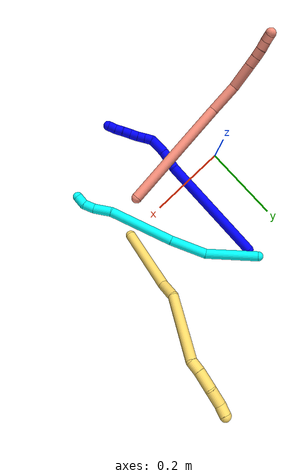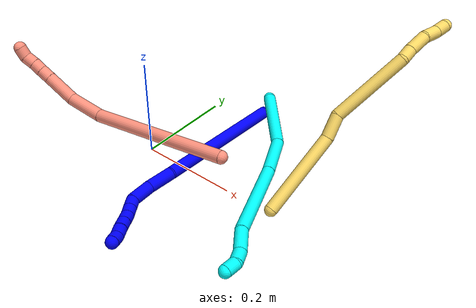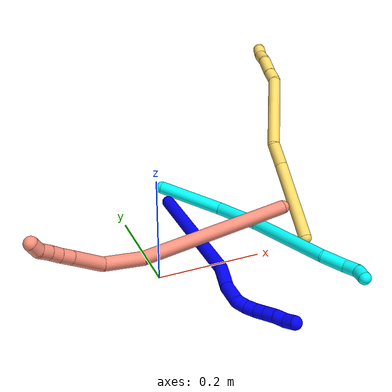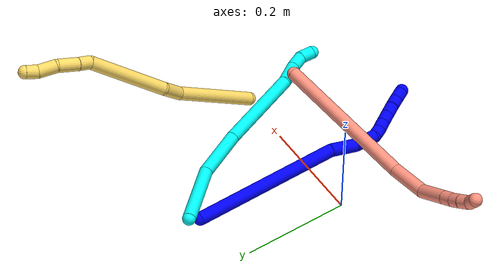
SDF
<sdf version="1.7">
 <world name="default">
  <model name="1">
   <static>0</static>
   <link name="1">
    <collision name="collision-cylinder-e_1_1_4">
     <pose>0.008289 -0.112985 -0.086522 2.22432 0.058181 0.117731</pose>
     <geometry><cylinder><radius>0.0125</radius><length>0.285099</length></cylinder></geometry>
     <surface>
      <friction><ode><mu>1.16</mu><mu2>1.16</mu2><slip1>0</slip1><slip2>0</slip2></ode></friction>
      <contact><ode><kp>1e+06</kp><kd>1</kd><max_vel>0</max_vel><min_depth>0.001</min_depth></ode></contact>
     </surface>
    </collision>
    <visual name="visual-cylinder-e_1_1_4">
     <pose>0.008289 -0.112985 -0.086522 2.22432 0.058181 0.117731</pose>
     <geometry><cylinder><radius>0.0125</radius><length>0.285099</length></cylinder></geometry>
     <material><ambient>0 0 1 1</ambient></material>
    </visual>
    <collision name="collision-cylinder-e_2_4_5">
     <pose>0.013325 -0.248405 -0.18449 2.04257 -0.128428 -0.209224</pose>
     <geometry><cylinder><radius>0.0125</radius><length>0.05079</length></cylinder></geometry>
     <surface>
      <friction><ode><mu>1.16</mu><mu2>1.16</mu2><slip1>0</slip1><slip2>0</slip2></ode></friction>
      <contact><ode><kp>1e+06</kp><kd>1</kd><max_vel>0</max_vel><min_depth>0.001</min_depth></ode></contact>
     </surface>
    </collision>
    <visual name="visual-cylinder-e_2_4_5">
     <pose>0.013325 -0.248405 -0.18449 2.04257 -0.128428 -0.209224</pose>
     <geometry><cylinder><radius>0.0125</radius><length>0.05079</length></cylinder></geometry>
     <material><ambient>0 0 1 1</ambient></material>
    </visual>
    <collision name="collision-cylinder-e_3_5_6">
     <pose>0.009464 -0.287806 -0.209417 2.24219 -0.028117 -0.058238</pose>
     <geometry><cylinder><radius>0.0125</radius><length>0.043359</length></cylinder></geometry>
     <surface>
      <friction><ode><mu>1.16</mu><mu2>1.16</mu2><slip1>0</slip1><slip2>0</slip2></ode></friction>
      <contact><ode><kp>1e+06</kp><kd>1</kd><max_vel>0</max_vel><min_depth>0.001</min_depth></ode></contact>
     </surface>
    </collision>
    <visual name="visual-cylinder-e_3_5_6">
     <pose>0.009464 -0.287806 -0.209417 2.24219 -0.028117 -0.058238</pose>
     <geometry><cylinder><radius>0.0125</radius><length>0.043359</length></cylinder></geometry>
     <material><ambient>0 0 1 1</ambient></material>
    </visual>
    <collision name="collision-cylinder-e_4_6_7">
     <pose>0.007946 -0.308529 -0.232167 2.75671 -0.090579 -0.457049</pose>
     <geometry><cylinder><radius>0.0125</radius><length>0.020084</length></cylinder></geometry>
     <surface>
      <friction><ode><mu>1.16</mu><mu2>1.16</mu2><slip1>0</slip1><slip2>0</slip2></ode></friction>
      <contact><ode><kp>1e+06</kp><kd>1</kd><max_vel>0</max_vel><min_depth>0.001</min_depth></ode></contact>
     </surface>
    </collision>
    <visual name="visual-cylinder-e_4_6_7">
     <pose>0.007946 -0.308529 -0.232167 2.75671 -0.090579 -0.457049</pose>
     <geometry><cylinder><radius>0.0125</radius><length>0.020084</length></cylinder></geometry>
     <material><ambient>0 0 1 1</ambient></material>
    </visual>
    <collision name="collision-cylinder-e_5_7_8">
     <pose>0.007427 -0.315554 -0.250958 2.81069 0.038687 0.230688</pose>
     <geometry><cylinder><radius>0.0125</radius><length>0.020151</length></cylinder></geometry>
     <surface>
      <friction><ode><mu>1.16</mu><mu2>1.16</mu2><slip1>0</slip1><slip2>0</slip2></ode></friction>
      <contact><ode><kp>1e+06</kp><kd>1</kd><max_vel>0</max_vel><min_depth>0.001</min_depth></ode></contact>
     </surface>
    </collision>
    <visual name="visual-cylinder-e_5_7_8">
     <pose>0.007427 -0.315554 -0.250958 2.81069 0.038687 0.230688</pose>
     <geometry><cylinder><radius>0.0125</radius><length>0.020151</length></cylinder></geometry>
     <material><ambient>0 0 1 1</ambient></material>
    </visual>
    <collision name="collision-cylinder-e_6_8_9">
     <pose>0.009699 -0.322584 -0.26961 2.75108 0.188369 0.891193</pose>
     <geometry><cylinder><radius>0.0125</radius><length>0.020101</length></cylinder></geometry>
     <surface>
      <friction><ode><mu>1.16</mu><mu2>1.16</mu2><slip1>0</slip1><slip2>0</slip2></ode></friction>
      <contact><ode><kp>1e+06</kp><kd>1</kd><max_vel>0</max_vel><min_depth>0.001</min_depth></ode></contact>
     </surface>
    </collision>
    <visual name="visual-cylinder-e_6_8_9">
     <pose>0.009699 -0.322584 -0.26961 2.75108 0.188369 0.891193</pose>
     <geometry><cylinder><radius>0.0125</radius><length>0.020101</length></cylinder></geometry>
     <material><ambient>0 0 1 1</ambient></material>
    </visual>
    <collision name="collision-cylinder-e_7_9_10">
     <pose>0.013424 -0.330161 -0.287877 2.74573 0.184041 0.862475</pose>
     <geometry><cylinder><radius>0.0125</radius><length>0.020147</length></cylinder></geometry>
     <surface>
      <friction><ode><mu>1.16</mu><mu2>1.16</mu2><slip1>0</slip1><slip2>0</slip2></ode></friction>
      <contact><ode><kp>1e+06</kp><kd>1</kd><max_vel>0</max_vel><min_depth>0.001</min_depth></ode></contact>
     </surface>
    </collision>
    <visual name="visual-cylinder-e_7_9_10">
     <pose>0.013424 -0.330161 -0.287877 2.74573 0.184041 0.862475</pose>
     <geometry><cylinder><radius>0.0125</radius><length>0.020147</length></cylinder></geometry>
     <material><ambient>0 0 1 1</ambient></material>
    </visual>
    <collision name="collision-cylinder-e_8_10_11">
     <pose>0.015634 -0.337691 -0.306334 2.76257 0.036471 0.189586</pose>
     <geometry><cylinder><radius>0.0125</radius><length>0.020077</length></cylinder></geometry>
     <surface>
      <friction><ode><mu>1.16</mu><mu2>1.16</mu2><slip1>0</slip1><slip2>0</slip2></ode></friction>
      <contact><ode><kp>1e+06</kp><kd>1</kd><max_vel>0</max_vel><min_depth>0.001</min_depth></ode></contact>
     </surface>
    </collision>
    <visual name="visual-cylinder-e_8_10_11">
     <pose>0.015634 -0.337691 -0.306334 2.76257 0.036471 0.189586</pose>
     <geometry><cylinder><radius>0.0125</radius><length>0.020077</length></cylinder></geometry>
     <material><ambient>0 0 1 1</ambient></material>
    </visual>
    <collision name="collision-cylinder-e_9_11_2">
     <pose>0.018926 -0.345883 -0.324216 2.65957 0.294039 1.08451</pose>
     <geometry><cylinder><radius>0.0125</radius><length>0.020192</length></cylinder></geometry>
     <surface>
      <friction><ode><mu>1.16</mu><mu2>1.16</mu2><slip1>0</slip1><slip2>0</slip2></ode></friction>
      <contact><ode><kp>1e+06</kp><kd>1</kd><max_vel>0</max_vel><min_depth>0.001</min_depth></ode></contact>
     </surface>
    </collision>
    <visual name="visual-cylinder-e_9_11_2">
     <pose>0.018926 -0.345883 -0.324216 2.65957 0.294039 1.08451</pose>
     <geometry><cylinder><radius>0.0125</radius><length>0.020192</length></cylinder></geometry>
     <material><ambient>0 0 1 1</ambient></material>
    </visual>
    <collision name="collision-sphere-2">
     <pose>0.021852 -0.350362 -0.332777 0 -0 0</pose>
     <geometry><sphere><radius>0.0125</radius></sphere></geometry>
     <surface>
      <friction><ode><mu>1.16</mu><mu2>1.16</mu2><slip1>0</slip1><slip2>0</slip2></ode></friction>
      <contact><ode><kp>1e+06</kp><kd>1</kd><max_vel>0</max_vel><min_depth>0.001</min_depth></ode></contact>
     </surface>
    </collision>
    <visual name="visual-sphere-2">
     <pose>0.021852 -0.350362 -0.332777 0 -0 0</pose>
     <geometry><sphere><radius>0.0125</radius></sphere></geometry>
     <material><ambient>0 0 1 1</ambient></material>
    </visual>
    <collision name="collision-sphere-11">
     <pose>0.016 -0.341403 -0.315654 0 -0 0</pose>
     <geometry><sphere><radius>0.0125</radius></sphere></geometry>
     <surface>
      <friction><ode><mu>1.16</mu><mu2>1.16</mu2><slip1>0</slip1><slip2>0</slip2></ode></friction>
      <contact><ode><kp>1e+06</kp><kd>1</kd><max_vel>0</max_vel><min_depth>0.001</min_depth></ode></contact>
     </surface>
    </collision>
    <visual name="visual-sphere-11">
     <pose>0.016 -0.341403 -0.315654 0 -0 0</pose>
     <geometry><sphere><radius>0.0125</radius></sphere></geometry>
     <material><ambient>0 0 1 1</ambient></material>
    </visual>
    <collision name="collision-sphere-10">
     <pose>0.015268 -0.333979 -0.297014 0 -0 0</pose>
     <geometry><sphere><radius>0.0125</radius></sphere></geometry>
     <surface>
      <friction><ode><mu>1.16</mu><mu2>1.16</mu2><slip1>0</slip1><slip2>0</slip2></ode></friction>
      <contact><ode><kp>1e+06</kp><kd>1</kd><max_vel>0</max_vel><min_depth>0.001</min_depth></ode></contact>
     </surface>
    </collision>
    <visual name="visual-sphere-10">
     <pose>0.015268 -0.333979 -0.297014 0 -0 0</pose>
     <geometry><sphere><radius>0.0125</radius></sphere></geometry>
     <material><ambient>0 0 1 1</ambient></material>
    </visual>
    <collision name="collision-sphere-9">
     <pose>0.011581 -0.326342 -0.278739 0 -0 0</pose>
     <geometry><sphere><radius>0.0125</radius></sphere></geometry>
     <surface>
      <friction><ode><mu>1.16</mu><mu2>1.16</mu2><slip1>0</slip1><slip2>0</slip2></ode></friction>
      <contact><ode><kp>1e+06</kp><kd>1</kd><max_vel>0</max_vel><min_depth>0.001</min_depth></ode></contact>
     </surface>
    </collision>
    <visual name="visual-sphere-9">
     <pose>0.011581 -0.326342 -0.278739 0 -0 0</pose>
     <geometry><sphere><radius>0.0125</radius></sphere></geometry>
     <material><ambient>0 0 1 1</ambient></material>
    </visual>
    <collision name="collision-sphere-4">
     <pose>0.016578 -0.22597 -0.173044 0 -0 0</pose>
     <geometry><sphere><radius>0.0125</radius></sphere></geometry>
     <surface>
      <friction><ode><mu>1.16</mu><mu2>1.16</mu2><slip1>0</slip1><slip2>0</slip2></ode></friction>
      <contact><ode><kp>1e+06</kp><kd>1</kd><max_vel>0</max_vel><min_depth>0.001</min_depth></ode></contact>
     </surface>
    </collision>
    <visual name="visual-sphere-4">
     <pose>0.016578 -0.22597 -0.173044 0 -0 0</pose>
     <geometry><sphere><radius>0.0125</radius></sphere></geometry>
     <material><ambient>0 0 1 1</ambient></material>
    </visual>
    <collision name="collision-sphere-1">
     <geometry><sphere><radius>0.0125</radius></sphere></geometry>
     <surface>
      <friction><ode><mu>1.16</mu><mu2>1.16</mu2><slip1>0</slip1><slip2>0</slip2></ode></friction>
      <contact><ode><kp>1e+06</kp><kd>1</kd><max_vel>0</max_vel><min_depth>0.001</min_depth></ode></contact>
     </surface>
    </collision>
    <visual name="visual-sphere-1">
     <geometry><sphere><radius>0.0125</radius></sphere></geometry>
     <material><ambient>0 0 1 1</ambient></material>
    </visual>
    <collision name="collision-sphere-8">
     <pose>0.007817 -0.318826 -0.26048 0 -0 0</pose>
     <geometry><sphere><radius>0.0125</radius></sphere></geometry>
     <surface>
      <friction><ode><mu>1.16</mu><mu2>1.16</mu2><slip1>0</slip1><slip2>0</slip2></ode></friction>
      <contact><ode><kp>1e+06</kp><kd>1</kd><max_vel>0</max_vel><min_depth>0.001</min_depth></ode></contact>
     </surface>
    </collision>
    <visual name="visual-sphere-8">
     <pose>0.007817 -0.318826 -0.26048 0 -0 0</pose>
     <geometry><sphere><radius>0.0125</radius></sphere></geometry>
     <material><ambient>0 0 1 1</ambient></material>
    </visual>
    <collision name="collision-sphere-5">
     <pose>0.010073 -0.270839 -0.195936 0 -0 0</pose>
     <geometry><sphere><radius>0.0125</radius></sphere></geometry>
     <surface>
      <friction><ode><mu>1.16</mu><mu2>1.16</mu2><slip1>0</slip1><slip2>0</slip2></ode></friction>
      <contact><ode><kp>1e+06</kp><kd>1</kd><max_vel>0</max_vel><min_depth>0.001</min_depth></ode></contact>
     </surface>
    </collision>
    <visual name="visual-sphere-5">
     <pose>0.010073 -0.270839 -0.195936 0 -0 0</pose>
     <geometry><sphere><radius>0.0125</radius></sphere></geometry>
     <material><ambient>0 0 1 1</ambient></material>
    </visual>
    <collision name="collision-sphere-6">
     <pose>0.008854 -0.304774 -0.222898 0 -0 0</pose>
     <geometry><sphere><radius>0.0125</radius></sphere></geometry>
     <surface>
      <friction><ode><mu>1.16</mu><mu2>1.16</mu2><slip1>0</slip1><slip2>0</slip2></ode></friction>
      <contact><ode><kp>1e+06</kp><kd>1</kd><max_vel>0</max_vel><min_depth>0.001</min_depth></ode></contact>
     </surface>
    </collision>
    <visual name="visual-sphere-6">
     <pose>0.008854 -0.304774 -0.222898 0 -0 0</pose>
     <geometry><sphere><radius>0.0125</radius></sphere></geometry>
     <material><ambient>0 0 1 1</ambient></material>
    </visual>
    <collision name="collision-sphere-7">
     <pose>0.007037 -0.312283 -0.241436 0 -0 0</pose>
     <geometry><sphere><radius>0.0125</radius></sphere></geometry>
     <surface>
      <friction><ode><mu>1.16</mu><mu2>1.16</mu2><slip1>0</slip1><slip2>0</slip2></ode></friction>
      <contact><ode><kp>1e+06</kp><kd>1</kd><max_vel>0</max_vel><min_depth>0.001</min_depth></ode></contact>
     </surface>
    </collision>
    <visual name="visual-sphere-7">
     <pose>0.007037 -0.312283 -0.241436 0 -0 0</pose>
     <geometry><sphere><radius>0.0125</radius></sphere></geometry>
     <material><ambient>0 0 1 1</ambient></material>
    </visual>
    <inertial>
     <pose>0.009842 -0.193525 -0.153507 0 -0 0</pose>
     <mass>0.5</mass>
     <inertia>
      <ixx>0.002183</ixx>
      <ixy>0</ixy>
      <ixz>0</ixz>
      <iyy>-0.000978</iyy>
      <iyz>0</iyz>
      <izz>0.001423</izz>
     </inertia>
    </inertial>
   </link>
   <pose>0.106816 0.236641 0.01171 0.015706 -1.54335 -0.683867</pose>
  </model>
  <model name="3">
   <static>0</static>
   <link name="3">
    <collision name="collision-cylinder-e_1_1_4">
     <pose>0.010481 0.00282 0.065816 -0.042819 0.157777 -0.003385</pose>
     <geometry><cylinder><radius>0.0125</radius><length>0.13341</length></cylinder></geometry>
     <surface>
      <friction><ode><mu>1.16</mu><mu2>1.16</mu2><slip1>0</slip1><slip2>0</slip2></ode></friction>
      <contact><ode><kp>1e+06</kp><kd>1</kd><max_vel>0</max_vel><min_depth>0.001</min_depth></ode></contact>
     </surface>
    </collision>
    <visual name="visual-cylinder-e_1_1_4">
     <pose>0.010481 0.00282 0.065816 -0.042819 0.157777 -0.003385</pose>
     <geometry><cylinder><radius>0.0125</radius><length>0.13341</length></cylinder></geometry>
     <material><ambient>0.003922 1 0.996078 1</ambient></material>
    </visual>
    <collision name="collision-cylinder-e_2_4_5">
     <pose>0.029431 -0.009842 0.176287 0.333735 0.177302 0.02994</pose>
     <geometry><cylinder><radius>0.0125</radius><length>0.096031</length></cylinder></geometry>
     <surface>
      <friction><ode><mu>1.16</mu><mu2>1.16</mu2><slip1>0</slip1><slip2>0</slip2></ode></friction>
      <contact><ode><kp>1e+06</kp><kd>1</kd><max_vel>0</max_vel><min_depth>0.001</min_depth></ode></contact>
     </surface>
    </collision>
    <visual name="visual-cylinder-e_2_4_5">
     <pose>0.029431 -0.009842 0.176287 0.333735 0.177302 0.02994</pose>
     <geometry><cylinder><radius>0.0125</radius><length>0.096031</length></cylinder></geometry>
     <material><ambient>0.003922 1 0.996078 1</ambient></material>
    </visual>
    <collision name="collision-cylinder-e_3_5_6">
     <pose>0.056982 -0.057463 0.297247 0.398632 0.22652 0.045945</pose>
     <geometry><cylinder><radius>0.0125</radius><length>0.169935</length></cylinder></geometry>
     <surface>
      <friction><ode><mu>1.16</mu><mu2>1.16</mu2><slip1>0</slip1><slip2>0</slip2></ode></friction>
      <contact><ode><kp>1e+06</kp><kd>1</kd><max_vel>0</max_vel><min_depth>0.001</min_depth></ode></contact>
     </surface>
    </collision>
    <visual name="visual-cylinder-e_3_5_6">
     <pose>0.056982 -0.057463 0.297247 0.398632 0.22652 0.045945</pose>
     <geometry><cylinder><radius>0.0125</radius><length>0.169935</length></cylinder></geometry>
     <material><ambient>0.003922 1 0.996078 1</ambient></material>
    </visual>
    <collision name="collision-cylinder-e_4_6_7">
     <pose>0.080971 -0.091965 0.396527 0.102551 0.209326 0.010782</pose>
     <geometry><cylinder><radius>0.0125</radius><length>0.047222</length></cylinder></geometry>
     <surface>
      <friction><ode><mu>1.16</mu><mu2>1.16</mu2><slip1>0</slip1><slip2>0</slip2></ode></friction>
      <contact><ode><kp>1e+06</kp><kd>1</kd><max_vel>0</max_vel><min_depth>0.001</min_depth></ode></contact>
     </surface>
    </collision>
    <visual name="visual-cylinder-e_4_6_7">
     <pose>0.080971 -0.091965 0.396527 0.102551 0.209326 0.010782</pose>
     <geometry><cylinder><radius>0.0125</radius><length>0.047222</length></cylinder></geometry>
     <material><ambient>0.003922 1 0.996078 1</ambient></material>
    </visual>
    <collision name="collision-cylinder-e_5_7_8">
     <pose>0.087898 -0.099561 0.432335 0.38703 0.144781 0.02842</pose>
     <geometry><cylinder><radius>0.0125</radius><length>0.028011</length></cylinder></geometry>
     <surface>
      <friction><ode><mu>1.16</mu><mu2>1.16</mu2><slip1>0</slip1><slip2>0</slip2></ode></friction>
      <contact><ode><kp>1e+06</kp><kd>1</kd><max_vel>0</max_vel><min_depth>0.001</min_depth></ode></contact>
     </surface>
    </collision>
    <visual name="visual-cylinder-e_5_7_8">
     <pose>0.087898 -0.099561 0.432335 0.38703 0.144781 0.02842</pose>
     <geometry><cylinder><radius>0.0125</radius><length>0.028011</length></cylinder></geometry>
     <material><ambient>0.003922 1 0.996078 1</ambient></material>
    </visual>
    <collision name="collision-cylinder-e_6_8_2">
     <pose>0.095056 -0.113135 0.453241 0.801964 0.416598 0.178739</pose>
     <geometry><cylinder><radius>0.0125</radius><length>0.025391</length></cylinder></geometry>
     <surface>
      <friction><ode><mu>1.16</mu><mu2>1.16</mu2><slip1>0</slip1><slip2>0</slip2></ode></friction>
      <contact><ode><kp>1e+06</kp><kd>1</kd><max_vel>0</max_vel><min_depth>0.001</min_depth></ode></contact>
     </surface>
    </collision>
    <visual name="visual-cylinder-e_6_8_2">
     <pose>0.095056 -0.113135 0.453241 0.801964 0.416598 0.178739</pose>
     <geometry><cylinder><radius>0.0125</radius><length>0.025391</length></cylinder></geometry>
     <material><ambient>0.003922 1 0.996078 1</ambient></material>
    </visual>
    <collision name="collision-sphere-2">
     <pose>0.100193 -0.12148 0.461313 0 -0 0</pose>
     <geometry><sphere><radius>0.0125</radius></sphere></geometry>
     <surface>
      <friction><ode><mu>1.16</mu><mu2>1.16</mu2><slip1>0</slip1><slip2>0</slip2></ode></friction>
      <contact><ode><kp>1e+06</kp><kd>1</kd><max_vel>0</max_vel><min_depth>0.001</min_depth></ode></contact>
     </surface>
    </collision>
    <visual name="visual-sphere-2">
     <pose>0.100193 -0.12148 0.461313 0 -0 0</pose>
     <geometry><sphere><radius>0.0125</radius></sphere></geometry>
     <material><ambient>0.003922 1 0.996078 1</ambient></material>
    </visual>
    <collision name="collision-sphere-4">
     <pose>0.020962 0.00564 0.131632 0 -0 0</pose>
     <geometry><sphere><radius>0.0125</radius></sphere></geometry>
     <surface>
      <friction><ode><mu>1.16</mu><mu2>1.16</mu2><slip1>0</slip1><slip2>0</slip2></ode></friction>
      <contact><ode><kp>1e+06</kp><kd>1</kd><max_vel>0</max_vel><min_depth>0.001</min_depth></ode></contact>
     </surface>
    </collision>
    <visual name="visual-sphere-4">
     <pose>0.020962 0.00564 0.131632 0 -0 0</pose>
     <geometry><sphere><radius>0.0125</radius></sphere></geometry>
     <material><ambient>0.003922 1 0.996078 1</ambient></material>
    </visual>
    <collision name="collision-sphere-1">
     <geometry><sphere><radius>0.0125</radius></sphere></geometry>
     <surface>
      <friction><ode><mu>1.16</mu><mu2>1.16</mu2><slip1>0</slip1><slip2>0</slip2></ode></friction>
      <contact><ode><kp>1e+06</kp><kd>1</kd><max_vel>0</max_vel><min_depth>0.001</min_depth></ode></contact>
     </surface>
    </collision>
    <visual name="visual-sphere-1">
     <geometry><sphere><radius>0.0125</radius></sphere></geometry>
     <material><ambient>0.003922 1 0.996078 1</ambient></material>
    </visual>
    <collision name="collision-sphere-8">
     <pose>0.089919 -0.104791 0.445169 0 -0 0</pose>
     <geometry><sphere><radius>0.0125</radius></sphere></geometry>
     <surface>
      <friction><ode><mu>1.16</mu><mu2>1.16</mu2><slip1>0</slip1><slip2>0</slip2></ode></friction>
      <contact><ode><kp>1e+06</kp><kd>1</kd><max_vel>0</max_vel><min_depth>0.001</min_depth></ode></contact>
     </surface>
    </collision>
    <visual name="visual-sphere-8">
     <pose>0.089919 -0.104791 0.445169 0 -0 0</pose>
     <geometry><sphere><radius>0.0125</radius></sphere></geometry>
     <material><ambient>0.003922 1 0.996078 1</ambient></material>
    </visual>
    <collision name="collision-sphere-5">
     <pose>0.037899 -0.025324 0.220942 0 -0 0</pose>
     <geometry><sphere><radius>0.0125</radius></sphere></geometry>
     <surface>
      <friction><ode><mu>1.16</mu><mu2>1.16</mu2><slip1>0</slip1><slip2>0</slip2></ode></friction>
      <contact><ode><kp>1e+06</kp><kd>1</kd><max_vel>0</max_vel><min_depth>0.001</min_depth></ode></contact>
     </surface>
    </collision>
    <visual name="visual-sphere-5">
     <pose>0.037899 -0.025324 0.220942 0 -0 0</pose>
     <geometry><sphere><radius>0.0125</radius></sphere></geometry>
     <material><ambient>0.003922 1 0.996078 1</ambient></material>
    </visual>
    <collision name="collision-sphere-6">
     <pose>0.076065 -0.089601 0.373552 0 -0 0</pose>
     <geometry><sphere><radius>0.0125</radius></sphere></geometry>
     <surface>
      <friction><ode><mu>1.16</mu><mu2>1.16</mu2><slip1>0</slip1><slip2>0</slip2></ode></friction>
      <contact><ode><kp>1e+06</kp><kd>1</kd><max_vel>0</max_vel><min_depth>0.001</min_depth></ode></contact>
     </surface>
    </collision>
    <visual name="visual-sphere-6">
     <pose>0.076065 -0.089601 0.373552 0 -0 0</pose>
     <geometry><sphere><radius>0.0125</radius></sphere></geometry>
     <material><ambient>0.003922 1 0.996078 1</ambient></material>
    </visual>
    <collision name="collision-sphere-7">
     <pose>0.085877 -0.09433 0.419501 0 -0 0</pose>
     <geometry><sphere><radius>0.0125</radius></sphere></geometry>
     <surface>
      <friction><ode><mu>1.16</mu><mu2>1.16</mu2><slip1>0</slip1><slip2>0</slip2></ode></friction>
      <contact><ode><kp>1e+06</kp><kd>1</kd><max_vel>0</max_vel><min_depth>0.001</min_depth></ode></contact>
     </surface>
    </collision>
    <visual name="visual-sphere-7">
     <pose>0.085877 -0.09433 0.419501 0 -0 0</pose>
     <geometry><sphere><radius>0.0125</radius></sphere></geometry>
     <material><ambient>0.003922 1 0.996078 1</ambient></material>
    </visual>
    <inertial>
     <pose>0.045214 -0.040676 0.237131 0 -0 0</pose>
     <mass>0.5</mass>
     <inertia>
      <ixx>0.000725</ixx>
      <ixy>0</ixy>
      <ixz>0</ixz>
      <iyy>0.000687</iyy>
      <iyz>0</iyz>
      <izz>7.1e-05</izz>
     </inertia>
    </inertial>
   </link>
   <pose>0.102983 0.262694 0.033822 -1.58261 0.98646 -2.32754</pose>
  </model>
  <model name="5">
   <static>0</static>
   <link name="5">
    <collision name="collision-cylinder-e_1_1_4">
     <pose>-0.059439 -0.01456 -0.058732 2.89859 -0.776469 -2.56135</pose>
     <geometry><cylinder><radius>0.0125</radius><length>0.16964</length></cylinder></geometry>
     <surface>
      <friction><ode><mu>1.16</mu><mu2>1.16</mu2><slip1>0</slip1><slip2>0</slip2></ode></friction>
      <contact><ode><kp>1e+06</kp><kd>1</kd><max_vel>0</max_vel><min_depth>0.001</min_depth></ode></contact>
     </surface>
    </collision>
    <visual name="visual-cylinder-e_1_1_4">
     <pose>-0.059439 -0.01456 -0.058732 2.89859 -0.776469 -2.56135</pose>
     <geometry><cylinder><radius>0.0125</radius><length>0.16964</length></cylinder></geometry>
     <material><ambient>1 0.858824 0.4 1</ambient></material>
    </visual>
    <collision name="collision-cylinder-e_2_4_5">
     <pose>-0.132294 -0.027677 -0.136639 -3.06649 -0.609203 2.90372</pose>
     <geometry><cylinder><radius>0.0125</radius><length>0.046894</length></cylinder></geometry>
     <surface>
      <friction><ode><mu>1.16</mu><mu2>1.16</mu2><slip1>0</slip1><slip2>0</slip2></ode></friction>
      <contact><ode><kp>1e+06</kp><kd>1</kd><max_vel>0</max_vel><min_depth>0.001</min_depth></ode></contact>
     </surface>
    </collision>
    <visual name="visual-cylinder-e_2_4_5">
     <pose>-0.132294 -0.027677 -0.136639 -3.06649 -0.609203 2.90372</pose>
     <geometry><cylinder><radius>0.0125</radius><length>0.046894</length></cylinder></geometry>
     <material><ambient>1 0.858824 0.4 1</ambient></material>
    </visual>
    <collision name="collision-cylinder-e_3_5_6">
     <pose>-0.185694 -0.054897 -0.2169 2.70287 -0.534925 -1.77563</pose>
     <geometry><cylinder><radius>0.0125</radius><length>0.156865</length></cylinder></geometry>
     <surface>
      <friction><ode><mu>1.16</mu><mu2>1.16</mu2><slip1>0</slip1><slip2>0</slip2></ode></friction>
      <contact><ode><kp>1e+06</kp><kd>1</kd><max_vel>0</max_vel><min_depth>0.001</min_depth></ode></contact>
     </surface>
    </collision>
    <visual name="visual-cylinder-e_3_5_6">
     <pose>-0.185694 -0.054897 -0.2169 2.70287 -0.534925 -1.77563</pose>
     <geometry><cylinder><radius>0.0125</radius><length>0.156865</length></cylinder></geometry>
     <material><ambient>1 0.858824 0.4 1</ambient></material>
    </visual>
    <collision name="collision-cylinder-e_4_6_7">
     <pose>-0.236404 -0.086017 -0.284824 2.79662 -0.975362 -2.50687</pose>
     <geometry><cylinder><radius>0.0125</radius><length>0.025913</length></cylinder></geometry>
     <surface>
      <friction><ode><mu>1.16</mu><mu2>1.16</mu2><slip1>0</slip1><slip2>0</slip2></ode></friction>
      <contact><ode><kp>1e+06</kp><kd>1</kd><max_vel>0</max_vel><min_depth>0.001</min_depth></ode></contact>
     </surface>
    </collision>
    <visual name="visual-cylinder-e_4_6_7">
     <pose>-0.236404 -0.086017 -0.284824 2.79662 -0.975362 -2.50687</pose>
     <geometry><cylinder><radius>0.0125</radius><length>0.025913</length></cylinder></geometry>
     <material><ambient>1 0.858824 0.4 1</ambient></material>
    </visual>
    <collision name="collision-cylinder-e_5_7_8">
     <pose>-0.263601 -0.094636 -0.302603 2.62867 -0.919454 -2.16741</pose>
     <geometry><cylinder><radius>0.0125</radius><length>0.041421</length></cylinder></geometry>
     <surface>
      <friction><ode><mu>1.16</mu><mu2>1.16</mu2><slip1>0</slip1><slip2>0</slip2></ode></friction>
      <contact><ode><kp>1e+06</kp><kd>1</kd><max_vel>0</max_vel><min_depth>0.001</min_depth></ode></contact>
     </surface>
    </collision>
    <visual name="visual-cylinder-e_5_7_8">
     <pose>-0.263601 -0.094636 -0.302603 2.62867 -0.919454 -2.16741</pose>
     <geometry><cylinder><radius>0.0125</radius><length>0.041421</length></cylinder></geometry>
     <material><ambient>1 0.858824 0.4 1</ambient></material>
    </visual>
    <collision name="collision-cylinder-e_6_8_9">
     <pose>-0.29533 -0.10876 -0.317778 2.05963 -1.037 -1.51925</pose>
     <geometry><cylinder><radius>0.0125</radius><length>0.035448</length></cylinder></geometry>
     <surface>
      <friction><ode><mu>1.16</mu><mu2>1.16</mu2><slip1>0</slip1><slip2>0</slip2></ode></friction>
      <contact><ode><kp>1e+06</kp><kd>1</kd><max_vel>0</max_vel><min_depth>0.001</min_depth></ode></contact>
     </surface>
    </collision>
    <visual name="visual-cylinder-e_6_8_9">
     <pose>-0.29533 -0.10876 -0.317778 2.05963 -1.037 -1.51925</pose>
     <geometry><cylinder><radius>0.0125</radius><length>0.035448</length></cylinder></geometry>
     <material><ambient>1 0.858824 0.4 1</ambient></material>
    </visual>
    <collision name="collision-cylinder-e_7_9_2">
     <pose>-0.319538 -0.121709 -0.328084 2.45391 -0.850304 -1.80334</pose>
     <geometry><cylinder><radius>0.0125</radius><length>0.023818</length></cylinder></geometry>
     <surface>
      <friction><ode><mu>1.16</mu><mu2>1.16</mu2><slip1>0</slip1><slip2>0</slip2></ode></friction>
      <contact><ode><kp>1e+06</kp><kd>1</kd><max_vel>0</max_vel><min_depth>0.001</min_depth></ode></contact>
     </surface>
    </collision>
    <visual name="visual-cylinder-e_7_9_2">
     <pose>-0.319538 -0.121709 -0.328084 2.45391 -0.850304 -1.80334</pose>
     <geometry><cylinder><radius>0.0125</radius><length>0.023818</length></cylinder></geometry>
     <material><ambient>1 0.858824 0.4 1</ambient></material>
    </visual>
    <collision name="collision-sphere-2">
     <pose>-0.328488 -0.126696 -0.334156 0 -0 0</pose>
     <geometry><sphere><radius>0.0125</radius></sphere></geometry>
     <surface>
      <friction><ode><mu>1.16</mu><mu2>1.16</mu2><slip1>0</slip1><slip2>0</slip2></ode></friction>
      <contact><ode><kp>1e+06</kp><kd>1</kd><max_vel>0</max_vel><min_depth>0.001</min_depth></ode></contact>
     </surface>
    </collision>
    <visual name="visual-sphere-2">
     <pose>-0.328488 -0.126696 -0.334156 0 -0 0</pose>
     <geometry><sphere><radius>0.0125</radius></sphere></geometry>
     <material><ambient>1 0.858824 0.4 1</ambient></material>
    </visual>
    <collision name="collision-sphere-9">
     <pose>-0.310589 -0.116722 -0.322013 0 -0 0</pose>
     <geometry><sphere><radius>0.0125</radius></sphere></geometry>
     <surface>
      <friction><ode><mu>1.16</mu><mu2>1.16</mu2><slip1>0</slip1><slip2>0</slip2></ode></friction>
      <contact><ode><kp>1e+06</kp><kd>1</kd><max_vel>0</max_vel><min_depth>0.001</min_depth></ode></contact>
     </surface>
    </collision>
    <visual name="visual-sphere-9">
     <pose>-0.310589 -0.116722 -0.322013 0 -0 0</pose>
     <geometry><sphere><radius>0.0125</radius></sphere></geometry>
     <material><ambient>1 0.858824 0.4 1</ambient></material>
    </visual>
    <collision name="collision-sphere-4">
     <pose>-0.118878 -0.02912 -0.117464 0 -0 0</pose>
     <geometry><sphere><radius>0.0125</radius></sphere></geometry>
     <surface>
      <friction><ode><mu>1.16</mu><mu2>1.16</mu2><slip1>0</slip1><slip2>0</slip2></ode></friction>
      <contact><ode><kp>1e+06</kp><kd>1</kd><max_vel>0</max_vel><min_depth>0.001</min_depth></ode></contact>
     </surface>
    </collision>
    <visual name="visual-sphere-4">
     <pose>-0.118878 -0.02912 -0.117464 0 -0 0</pose>
     <geometry><sphere><radius>0.0125</radius></sphere></geometry>
     <material><ambient>1 0.858824 0.4 1</ambient></material>
    </visual>
    <collision name="collision-sphere-1">
     <geometry><sphere><radius>0.0125</radius></sphere></geometry>
     <surface>
      <friction><ode><mu>1.16</mu><mu2>1.16</mu2><slip1>0</slip1><slip2>0</slip2></ode></friction>
      <contact><ode><kp>1e+06</kp><kd>1</kd><max_vel>0</max_vel><min_depth>0.001</min_depth></ode></contact>
     </surface>
    </collision>
    <visual name="visual-sphere-1">
     <geometry><sphere><radius>0.0125</radius></sphere></geometry>
     <material><ambient>1 0.858824 0.4 1</ambient></material>
    </visual>
    <collision name="collision-sphere-8">
     <pose>-0.280072 -0.100798 -0.313543 0 -0 0</pose>
     <geometry><sphere><radius>0.0125</radius></sphere></geometry>
     <surface>
      <friction><ode><mu>1.16</mu><mu2>1.16</mu2><slip1>0</slip1><slip2>0</slip2></ode></friction>
      <contact><ode><kp>1e+06</kp><kd>1</kd><max_vel>0</max_vel><min_depth>0.001</min_depth></ode></contact>
     </surface>
    </collision>
    <visual name="visual-sphere-8">
     <pose>-0.280072 -0.100798 -0.313543 0 -0 0</pose>
     <geometry><sphere><radius>0.0125</radius></sphere></geometry>
     <material><ambient>1 0.858824 0.4 1</ambient></material>
    </visual>
    <collision name="collision-sphere-5">
     <pose>-0.145711 -0.026234 -0.155814 0 -0 0</pose>
     <geometry><sphere><radius>0.0125</radius></sphere></geometry>
     <surface>
      <friction><ode><mu>1.16</mu><mu2>1.16</mu2><slip1>0</slip1><slip2>0</slip2></ode></friction>
      <contact><ode><kp>1e+06</kp><kd>1</kd><max_vel>0</max_vel><min_depth>0.001</min_depth></ode></contact>
     </surface>
    </collision>
    <visual name="visual-sphere-5">
     <pose>-0.145711 -0.026234 -0.155814 0 -0 0</pose>
     <geometry><sphere><radius>0.0125</radius></sphere></geometry>
     <material><ambient>1 0.858824 0.4 1</ambient></material>
    </visual>
    <collision name="collision-sphere-6">
     <pose>-0.225678 -0.08356 -0.277986 0 -0 0</pose>
     <geometry><sphere><radius>0.0125</radius></sphere></geometry>
     <surface>
      <friction><ode><mu>1.16</mu><mu2>1.16</mu2><slip1>0</slip1><slip2>0</slip2></ode></friction>
      <contact><ode><kp>1e+06</kp><kd>1</kd><max_vel>0</max_vel><min_depth>0.001</min_depth></ode></contact>
     </surface>
    </collision>
    <visual name="visual-sphere-6">
     <pose>-0.225678 -0.08356 -0.277986 0 -0 0</pose>
     <geometry><sphere><radius>0.0125</radius></sphere></geometry>
     <material><ambient>1 0.858824 0.4 1</ambient></material>
    </visual>
    <collision name="collision-sphere-7">
     <pose>-0.247131 -0.088475 -0.291663 0 -0 0</pose>
     <geometry><sphere><radius>0.0125</radius></sphere></geometry>
     <surface>
      <friction><ode><mu>1.16</mu><mu2>1.16</mu2><slip1>0</slip1><slip2>0</slip2></ode></friction>
      <contact><ode><kp>1e+06</kp><kd>1</kd><max_vel>0</max_vel><min_depth>0.001</min_depth></ode></contact>
     </surface>
    </collision>
    <visual name="visual-sphere-7">
     <pose>-0.247131 -0.088475 -0.291663 0 -0 0</pose>
     <geometry><sphere><radius>0.0125</radius></sphere></geometry>
     <material><ambient>1 0.858824 0.4 1</ambient></material>
    </visual>
    <inertial>
     <pose>-0.161081 -0.050565 -0.178778 0 -0 0</pose>
     <mass>0.5</mass>
     <inertia>
      <ixx>-0.000786</ixx>
      <ixy>0</ixy>
      <ixz>0</ixz>
      <iyy>7.3e-05</iyy>
      <iyz>0</iyz>
      <izz>0.000647</izz>
     </inertia>
    </inertial>
   </link>
   <pose>0.303343 0.001345 0.011495 2.83795 -0.132302 -1.24428</pose>
  </model>
  <model name="16">
   <static>0</static>
   <link name="16">
    <collision name="collision-cylinder-e_1_1_4">
     <pose>-0.112495 -0.068189 -0.049657 2.20022 -0.927397 -1.55341</pose>
     <geometry><cylinder><radius>0.0125</radius><length>0.281216</length></cylinder></geometry>
     <surface>
      <friction><ode><mu>1.16</mu><mu2>1.16</mu2><slip1>0</slip1><slip2>0</slip2></ode></friction>
      <contact><ode><kp>1e+06</kp><kd>1</kd><max_vel>0</max_vel><min_depth>0.001</min_depth></ode></contact>
     </surface>
    </collision>
    <visual name="visual-cylinder-e_1_1_4">
     <pose>-0.112495 -0.068189 -0.049657 2.20022 -0.927397 -1.55341</pose>
     <geometry><cylinder><radius>0.0125</radius><length>0.281216</length></cylinder></geometry>
     <material><ambient>1 0.576471 0.494118 1</ambient></material>
    </visual>
    <collision name="collision-cylinder-e_2_4_5">
     <pose>-0.256084 -0.147091 -0.115561 2.55862 -1.01154 -2.14861</pose>
     <geometry><cylinder><radius>0.0125</radius><length>0.073364</length></cylinder></geometry>
     <surface>
      <friction><ode><mu>1.16</mu><mu2>1.16</mu2><slip1>0</slip1><slip2>0</slip2></ode></friction>
      <contact><ode><kp>1e+06</kp><kd>1</kd><max_vel>0</max_vel><min_depth>0.001</min_depth></ode></contact>
     </surface>
    </collision>
    <visual name="visual-cylinder-e_2_4_5">
     <pose>-0.256084 -0.147091 -0.115561 2.55862 -1.01154 -2.14861</pose>
     <geometry><cylinder><radius>0.0125</radius><length>0.073364</length></cylinder></geometry>
     <material><ambient>1 0.576471 0.494118 1</ambient></material>
    </visual>
    <collision name="collision-cylinder-e_3_5_6">
     <pose>-0.314472 -0.155074 -0.145405 -2.94338 -1.1007 2.82028</pose>
     <geometry><cylinder><radius>0.0125</radius><length>0.061232</length></cylinder></geometry>
     <surface>
      <friction><ode><mu>1.16</mu><mu2>1.16</mu2><slip1>0</slip1><slip2>0</slip2></ode></friction>
      <contact><ode><kp>1e+06</kp><kd>1</kd><max_vel>0</max_vel><min_depth>0.001</min_depth></ode></contact>
     </surface>
    </collision>
    <visual name="visual-cylinder-e_3_5_6">
     <pose>-0.314472 -0.155074 -0.145405 -2.94338 -1.1007 2.82028</pose>
     <geometry><cylinder><radius>0.0125</radius><length>0.061232</length></cylinder></geometry>
     <material><ambient>1 0.576471 0.494118 1</ambient></material>
    </visual>
    <collision name="collision-cylinder-e_4_6_7">
     <pose>-0.351856 -0.151443 -0.163931 -2.96082 -1.10984 2.85124</pose>
     <geometry><cylinder><radius>0.0125</radius><length>0.02253</length></cylinder></geometry>
     <surface>
      <friction><ode><mu>1.16</mu><mu2>1.16</mu2><slip1>0</slip1><slip2>0</slip2></ode></friction>
      <contact><ode><kp>1e+06</kp><kd>1</kd><max_vel>0</max_vel><min_depth>0.001</min_depth></ode></contact>
     </surface>
    </collision>
    <visual name="visual-cylinder-e_4_6_7">
     <pose>-0.351856 -0.151443 -0.163931 -2.96082 -1.10984 2.85124</pose>
     <geometry><cylinder><radius>0.0125</radius><length>0.02253</length></cylinder></geometry>
     <material><ambient>1 0.576471 0.494118 1</ambient></material>
    </visual>
    <collision name="collision-cylinder-e_5_7_8">
     <pose>-0.370915 -0.148948 -0.173003 -2.77428 -1.11118 2.56015</pose>
     <geometry><cylinder><radius>0.0125</radius><length>0.020015</length></cylinder></geometry>
     <surface>
      <friction><ode><mu>1.16</mu><mu2>1.16</mu2><slip1>0</slip1><slip2>0</slip2></ode></friction>
      <contact><ode><kp>1e+06</kp><kd>1</kd><max_vel>0</max_vel><min_depth>0.001</min_depth></ode></contact>
     </surface>
    </collision>
    <visual name="visual-cylinder-e_5_7_8">
     <pose>-0.370915 -0.148948 -0.173003 -2.77428 -1.11118 2.56015</pose>
     <geometry><cylinder><radius>0.0125</radius><length>0.020015</length></cylinder></geometry>
     <material><ambient>1 0.576471 0.494118 1</ambient></material>
    </visual>
    <collision name="collision-cylinder-e_6_8_9">
     <pose>-0.3898 -0.14608 -0.180556 -2.78417 -1.21907 2.63528</pose>
     <geometry><cylinder><radius>0.0125</radius><length>0.021126</length></cylinder></geometry>
     <surface>
      <friction><ode><mu>1.16</mu><mu2>1.16</mu2><slip1>0</slip1><slip2>0</slip2></ode></friction>
      <contact><ode><kp>1e+06</kp><kd>1</kd><max_vel>0</max_vel><min_depth>0.001</min_depth></ode></contact>
     </surface>
    </collision>
    <visual name="visual-cylinder-e_6_8_9">
     <pose>-0.3898 -0.14608 -0.180556 -2.78417 -1.21907 2.63528</pose>
     <geometry><cylinder><radius>0.0125</radius><length>0.021126</length></cylinder></geometry>
     <material><ambient>1 0.576471 0.494118 1</ambient></material>
    </visual>
    <collision name="collision-cylinder-e_7_9_2">
     <pose>-0.407412 -0.139497 -0.188185 -2.24235 -0.848408 1.50454</pose>
     <geometry><cylinder><radius>0.0125</radius><length>0.020516</length></cylinder></geometry>
     <surface>
      <friction><ode><mu>1.16</mu><mu2>1.16</mu2><slip1>0</slip1><slip2>0</slip2></ode></friction>
      <contact><ode><kp>1e+06</kp><kd>1</kd><max_vel>0</max_vel><min_depth>0.001</min_depth></ode></contact>
     </surface>
    </collision>
    <visual name="visual-cylinder-e_7_9_2">
     <pose>-0.407412 -0.139497 -0.188185 -2.24235 -0.848408 1.50454</pose>
     <geometry><cylinder><radius>0.0125</radius><length>0.020516</length></cylinder></geometry>
     <material><ambient>1 0.576471 0.494118 1</ambient></material>
    </visual>
    <collision name="collision-sphere-2">
     <pose>-0.415108 -0.134188 -0.192405 0 -0 0</pose>
     <geometry><sphere><radius>0.0125</radius></sphere></geometry>
     <surface>
      <friction><ode><mu>1.16</mu><mu2>1.16</mu2><slip1>0</slip1><slip2>0</slip2></ode></friction>
      <contact><ode><kp>1e+06</kp><kd>1</kd><max_vel>0</max_vel><min_depth>0.001</min_depth></ode></contact>
     </surface>
    </collision>
    <visual name="visual-sphere-2">
     <pose>-0.415108 -0.134188 -0.192405 0 -0 0</pose>
     <geometry><sphere><radius>0.0125</radius></sphere></geometry>
     <material><ambient>1 0.576471 0.494118 1</ambient></material>
    </visual>
    <collision name="collision-sphere-9">
     <pose>-0.399716 -0.144807 -0.183965 0 -0 0</pose>
     <geometry><sphere><radius>0.0125</radius></sphere></geometry>
     <surface>
      <friction><ode><mu>1.16</mu><mu2>1.16</mu2><slip1>0</slip1><slip2>0</slip2></ode></friction>
      <contact><ode><kp>1e+06</kp><kd>1</kd><max_vel>0</max_vel><min_depth>0.001</min_depth></ode></contact>
     </surface>
    </collision>
    <visual name="visual-sphere-9">
     <pose>-0.399716 -0.144807 -0.183965 0 -0 0</pose>
     <geometry><sphere><radius>0.0125</radius></sphere></geometry>
     <material><ambient>1 0.576471 0.494118 1</ambient></material>
    </visual>
    <collision name="collision-sphere-4">
     <pose>-0.22499 -0.136377 -0.099314 0 -0 0</pose>
     <geometry><sphere><radius>0.0125</radius></sphere></geometry>
     <surface>
      <friction><ode><mu>1.16</mu><mu2>1.16</mu2><slip1>0</slip1><slip2>0</slip2></ode></friction>
      <contact><ode><kp>1e+06</kp><kd>1</kd><max_vel>0</max_vel><min_depth>0.001</min_depth></ode></contact>
     </surface>
    </collision>
    <visual name="visual-sphere-4">
     <pose>-0.22499 -0.136377 -0.099314 0 -0 0</pose>
     <geometry><sphere><radius>0.0125</radius></sphere></geometry>
     <material><ambient>1 0.576471 0.494118 1</ambient></material>
    </visual>
    <collision name="collision-sphere-1">
     <geometry><sphere><radius>0.0125</radius></sphere></geometry>
     <surface>
      <friction><ode><mu>1.16</mu><mu2>1.16</mu2><slip1>0</slip1><slip2>0</slip2></ode></friction>
      <contact><ode><kp>1e+06</kp><kd>1</kd><max_vel>0</max_vel><min_depth>0.001</min_depth></ode></contact>
     </surface>
    </collision>
    <visual name="visual-sphere-1">
     <geometry><sphere><radius>0.0125</radius></sphere></geometry>
     <material><ambient>1 0.576471 0.494118 1</ambient></material>
    </visual>
    <collision name="collision-sphere-8">
     <pose>-0.379884 -0.147353 -0.177147 0 -0 0</pose>
     <geometry><sphere><radius>0.0125</radius></sphere></geometry>
     <surface>
      <friction><ode><mu>1.16</mu><mu2>1.16</mu2><slip1>0</slip1><slip2>0</slip2></ode></friction>
      <contact><ode><kp>1e+06</kp><kd>1</kd><max_vel>0</max_vel><min_depth>0.001</min_depth></ode></contact>
     </surface>
    </collision>
    <visual name="visual-sphere-8">
     <pose>-0.379884 -0.147353 -0.177147 0 -0 0</pose>
     <geometry><sphere><radius>0.0125</radius></sphere></geometry>
     <material><ambient>1 0.576471 0.494118 1</ambient></material>
    </visual>
    <collision name="collision-sphere-5">
     <pose>-0.287177 -0.157805 -0.131808 0 -0 0</pose>
     <geometry><sphere><radius>0.0125</radius></sphere></geometry>
     <surface>
      <friction><ode><mu>1.16</mu><mu2>1.16</mu2><slip1>0</slip1><slip2>0</slip2></ode></friction>
      <contact><ode><kp>1e+06</kp><kd>1</kd><max_vel>0</max_vel><min_depth>0.001</min_depth></ode></contact>
     </surface>
    </collision>
    <visual name="visual-sphere-5">
     <pose>-0.287177 -0.157805 -0.131808 0 -0 0</pose>
     <geometry><sphere><radius>0.0125</radius></sphere></geometry>
     <material><ambient>1 0.576471 0.494118 1</ambient></material>
    </visual>
    <collision name="collision-sphere-6">
     <pose>-0.341767 -0.152344 -0.159002 0 -0 0</pose>
     <geometry><sphere><radius>0.0125</radius></sphere></geometry>
     <surface>
      <friction><ode><mu>1.16</mu><mu2>1.16</mu2><slip1>0</slip1><slip2>0</slip2></ode></friction>
      <contact><ode><kp>1e+06</kp><kd>1</kd><max_vel>0</max_vel><min_depth>0.001</min_depth></ode></contact>
     </surface>
    </collision>
    <visual name="visual-sphere-6">
     <pose>-0.341767 -0.152344 -0.159002 0 -0 0</pose>
     <geometry><sphere><radius>0.0125</radius></sphere></geometry>
     <material><ambient>1 0.576471 0.494118 1</ambient></material>
    </visual>
    <collision name="collision-sphere-7">
     <pose>-0.361945 -0.150542 -0.16886 0 -0 0</pose>
     <geometry><sphere><radius>0.0125</radius></sphere></geometry>
     <surface>
      <friction><ode><mu>1.16</mu><mu2>1.16</mu2><slip1>0</slip1><slip2>0</slip2></ode></friction>
      <contact><ode><kp>1e+06</kp><kd>1</kd><max_vel>0</max_vel><min_depth>0.001</min_depth></ode></contact>
     </surface>
    </collision>
    <visual name="visual-sphere-7">
     <pose>-0.361945 -0.150542 -0.16886 0 -0 0</pose>
     <geometry><sphere><radius>0.0125</radius></sphere></geometry>
     <material><ambient>1 0.576471 0.494118 1</ambient></material>
    </visual>
    <inertial>
     <pose>-0.203247 -0.103608 -0.092354 0 -0 0</pose>
     <mass>0.5</mass>
     <inertia>
      <ixx>-0.001164</ixx>
      <ixy>0</ixy>
      <ixz>0</ixz>
      <iyy>0.000104</iyy>
      <iyz>0</iyz>
      <izz>0.002443</izz>
     </inertia>
    </inertial>
   </link>
   <pose>0.225211 -0.045811 0.123446 1.86523 0.338983 0.610787</pose>
  </model>
 </world>
</sdf>
